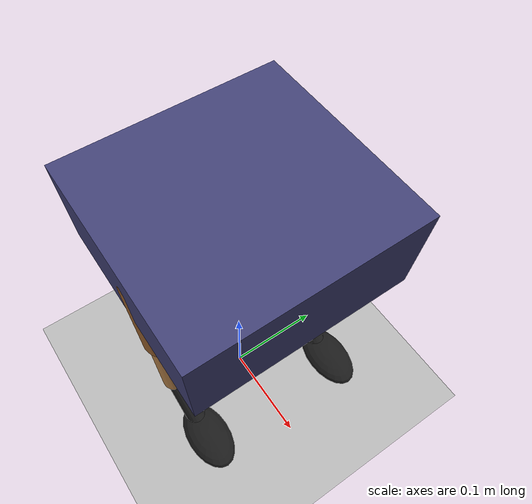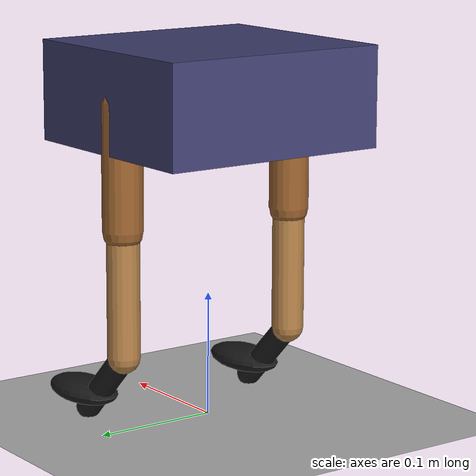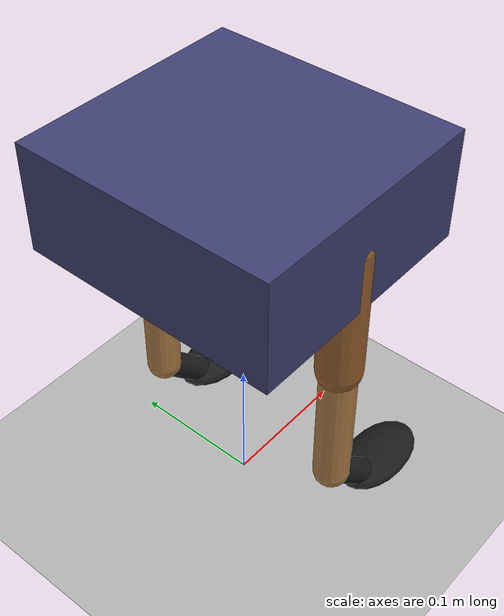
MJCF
<mujoco model="beaver_hind_legs_v1">

  <compiler angle="degree"/>
  <option gravity="0 0 -9.81" timestep="0.002"/>

  <default>
    <joint type="hinge" damping="0.5" armature="0.01" limited="true"/>
    <geom type="capsule" density="1200"/>
  </default>

  <asset>
    <texture type="skybox" builtin="gradient"
             rgb1="0.75 0.85 1.0" rgb2="0.3 0.4 0.6" width="256" height="256"/>
    <texture name="checker" type="2d" builtin="checker"
             rgb1="0.80 0.80 0.80" rgb2="0.60 0.60 0.60" width="256" height="256"/>
    <material name="floor_mat"  texture="checker" texrepeat="8 8"/>
    <material name="thigh_mat"  rgba="0.60 0.38 0.18 1"/>
    <material name="calf_mat"   rgba="0.70 0.50 0.28 1"/>
    <material name="web_mat"    rgba="0.12 0.12 0.12 1"/>
  </asset>

  <worldbody>

    <light pos="0 -1 2" dir="0 0.5 -1" diffuse="0.9 0.9 0.9" specular="0.3 0.3 0.3"/>
    <light pos="0  1 2" dir="0 -0.5 -1" diffuse="0.5 0.5 0.5"/>

    <!-- Ground plane: Z=0 -->
    <geom name="floor" type="plane" size="3 3 0.1"
          material="floor_mat" contype="1" conaffinity="1"/>

    <body name="pelvis" pos="0 0 0.26">
      <freejoint name="pelvis_free"/>
      <geom name="pelvis_geom" type="box"
            size="0.090 0.095 0.040"
            rgba="0.25 0.25 0.45 1" mass="2.25"/>
      <site name="imu" pos="0 0 0" size="0.005"/>

      <!-- ═══════════════════════════════════════
           LEFT HIND LEG  (Y = +0.080 m lateral)
           ═══════════════════════════════════════ -->
      <body name="left_thigh" pos="0 0.080 0">

        <!-- Hip rotates in sagittal plane → axis = Y -->
        <joint name="left_hip" axis="0 1 0"
               range="-70 100" damping="1.2"/>

        <!-- l1 = 0.100 m downward (-Z) -->
        <geom name="left_thigh_geom" type="capsule"
              fromto="0 0 0   0 0 -0.100"
              size="0.016" material="thigh_mat" mass="0.25"/>

        <body name="left_calf" pos="0 0 -0.100">

          <!-- Knee rotates in sagittal plane → axis = Y -->
          <joint name="left_knee" axis="0 1 0"
                 range="0 150" damping="0.8"/>

          <!-- l2 = 0.100 m downward (-Z) -->
          <geom name="left_calf_geom" type="capsule"
                fromto="0 0 0   0 0 -0.100"
                size="0.013" material="calf_mat" mass="0.20"/>

          <body name="left_web" pos="0 0 -0.100">

            <!-- Ankle: passive -->
            <joint name="left_ankle" axis="0 1 0"
                   range="-40 40" damping="0.3"/>

            <!-- l3 = 0.075 m web, angled forward (+X) -->
            <geom name="left_web_geom" type="capsule"
                  fromto="0 0 0   0.053 0 -0.053"
                  size="0.010" material="web_mat" mass="0.05"/>
            <!-- Webbed foot pad -->
            <geom name="left_web_pad" type="ellipsoid"
                  pos="0.060 0 -0.040"
                  size="0.038 0.022 0.010"
                  rgba="0.10 0.10 0.10 0.9" mass="0.02"
                  contype="1" conaffinity="1"/>

          </body>
        </body>
      </body><!-- end left leg -->

      <!-- ═══════════════════════════════════════
           RIGHT HIND LEG  (Y = -0.080 m lateral)
           ═══════════════════════════════════════ -->
      <body name="right_thigh" pos="0 -0.080 0">

        <joint name="right_hip" axis="0 1 0"
               range="-70 100" damping="1.2"/>
        <geom name="right_thigh_geom" type="capsule"
              fromto="0 0 0   0 0 -0.100"
              size="0.016" material="thigh_mat" mass="0.25"/>

        <body name="right_calf" pos="0 0 -0.100">

          <joint name="right_knee" axis="0 1 0"
                 range="0 150" damping="0.8"/>
          <geom name="right_calf_geom" type="capsule"
                fromto="0 0 0   0 0 -0.100"
                size="0.013" material="calf_mat" mass="0.20"/>

          <body name="right_web" pos="0 0 -0.100">

            <joint name="right_ankle" axis="0 1 0"
                   range="-40 40" damping="0.3"/>
            <geom name="right_web_geom" type="capsule"
                  fromto="0 0 0   0.053 0 -0.053"
                  size="0.010" material="web_mat" mass="0.05"/>
            <geom name="right_web_pad" type="ellipsoid"
                  pos="0.060 0 -0.040"
                  size="0.038 0.022 0.010"
                  rgba="0.10 0.10 0.10 0.9" mass="0.02"
                  contype="1" conaffinity="1"/>

          </body>
        </body>
      </body><!-- end right leg -->

    </body><!-- end pelvis -->
  </worldbody>

  <!-- ═══════════════════════════
       ACTUATORS
       ═══════════════════════════ -->
  <actuator>
    <motor name="left_hip_act"   joint="left_hip"   gear="60"
           ctrllimited="true" ctrlrange="-1 1"/>
    <motor name="left_knee_act"  joint="left_knee"  gear="50"
           ctrllimited="true" ctrlrange="-1 1"/>
    <motor name="right_hip_act"  joint="right_hip"  gear="60"
           ctrllimited="true" ctrlrange="-1 1"/>
    <motor name="right_knee_act" joint="right_knee" gear="50"
           ctrllimited="true" ctrlrange="-1 1"/>
  </actuator>

  <!-- ═══════════════════════════
       SENSORS
       ═══════════════════════════ -->
  <sensor>
    <jointpos name="s_lhip"    joint="left_hip"/>
    <jointpos name="s_lknee"   joint="left_knee"/>
    <jointpos name="s_lankle"  joint="left_ankle"/>
    <jointpos name="s_rhip"    joint="right_hip"/>
    <jointpos name="s_rknee"   joint="right_knee"/>
    <jointpos name="s_rankle"  joint="right_ankle"/>
    <accelerometer name="pelvis_acc" site="imu"/>
  </sensor>

  <keyframe>
    <key name="neutral_crouch"
         qpos="0 0 0.26   1 0 0 0
               -35 70 0
               -35 70 0"/>
  </keyframe>

</mujoco>
